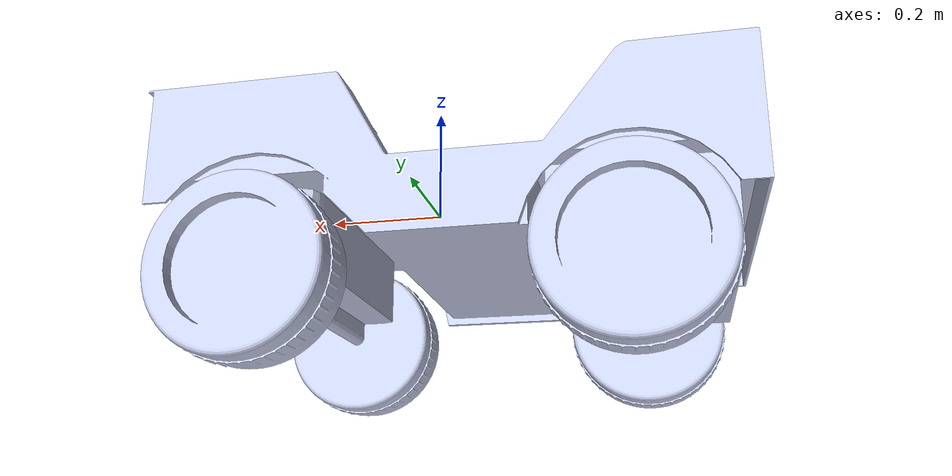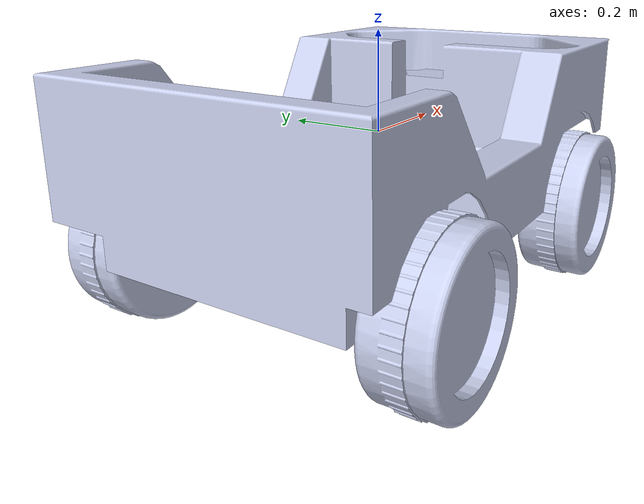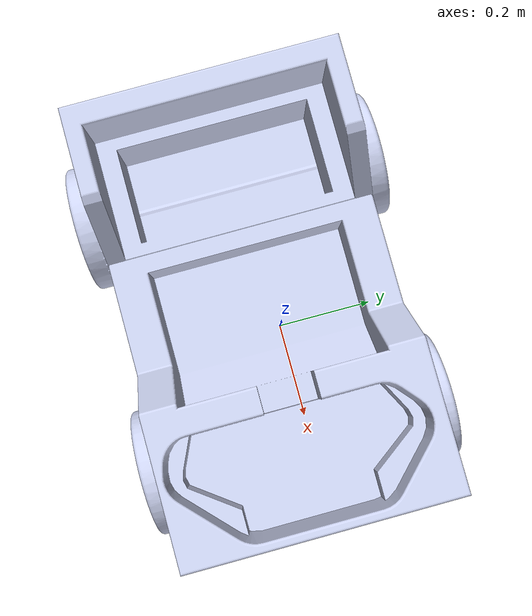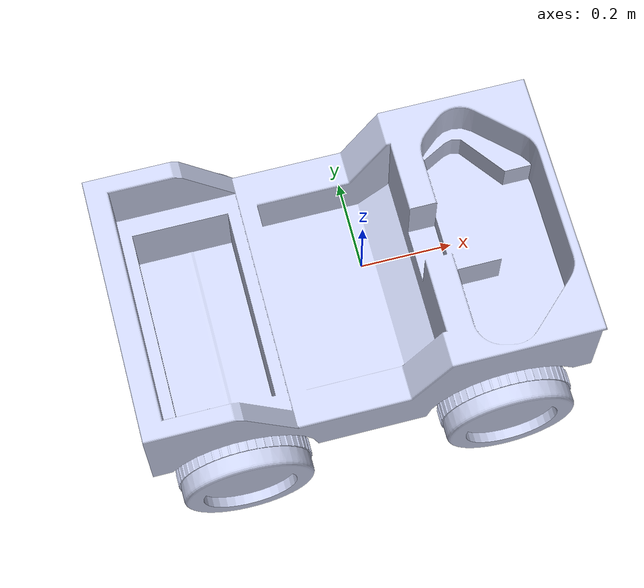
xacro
<?xml version="1.0"?>
<robot xmlns:xacro="http://ros.org/wiki/xacro" name="zenorak">

    <link name="base_link">
        <inertial>
            <origin xyz="0.00169935610472678 -0.0264088300158522 -0.00887384287152697" rpy="0 0 0" />
            <mass value="53.468367880832" />
            <inertia ixx="2.31995848291568" ixy="-0.0135330136565553" ixz="0.00962962421966709" iyy="5.75370953859927" iyz="-0.015886629814071" izz="7.30712487101093" />
        </inertial>
        <visual>
            <origin xyz="0 0 0" rpy="0 0 0" />
            <geometry>
                <mesh filename="file://$(find zenorak_ros2_control)/meshes/visual/base_link.STL" />
            </geometry>
            <material name="">
                <color rgba="0.792156862745098 0.819607843137255 0.933333333333333 1" />
            </material>
        </visual>
        <collision>
            <origin xyz="0 0 0" rpy="0 0 0" />
            <geometry>
                <mesh filename="file://$(find zenorak_ros2_control)/meshes/collision/base_link.STL" />
            </geometry>
        </collision>
    </link>
    <link name="front_left_wheel">
        <inertial>
            <origin xyz="1.58206781009085E-15 8.04911692853238E-16 0.0547827108814377" rpy="0 0 0" />
            <mass value="7.16104527274178" />
            <inertia ixx="0.0473444268968467" ixy="-3.03576608295941E-18" ixz="1.55929200281309E-18" iyy="0.0473444268968467" iyz="2.99484885934959E-19" izz="0.0801617478666343" />
        </inertial>
        <visual>
            <origin xyz="0 0 0" rpy="0 0 0" />
            <geometry>
                <mesh filename="file://$(find zenorak_ros2_control)/meshes/visual/front_left_wheel.STL" />
            </geometry>
            <material name="">
                <color rgba="0.792156862745098 0.819607843137255 0.933333333333333 1" />
            </material>
        </visual>
        <collision>
            <origin xyz="0 0 0" rpy="0 0 0" />
            <geometry>
                <mesh filename="file://$(find zenorak_ros2_control)/meshes/collision/front_left_wheel.STL" />
            </geometry>
        </collision>
    </link>
    <joint name="front_left_wheel_joint" type="continuous">
        <origin xyz="0.23992 -0.26239 -0.15849" rpy="1.5708 -0.1528 0" />
        <parent link="base_link" />
        <child link="front_left_wheel" />
        <axis xyz="0 0 1" />
    </joint>
    <link name="rear_left_wheel">
        <inertial>
            <origin xyz="6.10622663543836E-15 3.02535774210355E-15 0.0547827108814376" rpy="0 0 0" />
            <mass value="7.16104527274178" />
            <inertia ixx="0.0473444268968467" ixy="-5.20417042793042E-18" ixz="-7.65975378716319E-19" iyy="0.0473444268968467" iyz="1.65118432328216E-19" izz="0.0801617478666342" />
        </inertial>
        <visual>
            <origin xyz="0 0 0" rpy="0 0 0" />
            <geometry>
                <mesh filename="file://$(find zenorak_ros2_control)/meshes/visual/rear_left_wheel.STL" />
            </geometry>
            <material name="">
                <color rgba="0.792156862745098 0.819607843137255 0.933333333333333 1" />
            </material>
        </visual>
        <collision>
            <origin xyz="0 0 0" rpy="0 0 0" />
            <geometry>
                <mesh filename="file://$(find zenorak_ros2_control)/meshes/collision/rear_left_wheel.STL" />
            </geometry>
        </collision>
    </link>
    <joint name="rear_left_wheel_joint" type="continuous">
        <origin xyz="-0.3492 -0.26239 -0.15849" rpy="1.5708 -0.82404 0" />
        <parent link="base_link" />
        <child link="rear_left_wheel" />
        <axis xyz="0 0 1" />
    </joint>
    <link name="front_right_wheel">
        <inertial>
            <origin xyz="8.21565038222616E-15 3.73312492030209E-15 0.0547827108814377" rpy="0 0 0" />
            <mass value="7.16104527274178" />
            <inertia ixx="0.0473444268968467" ixy="-1.38777878078145E-17" ixz="-5.7829154300703E-17" iyy="0.0473444268968467" iyz="5.0895068506072E-17" izz="0.0801617478666342" />
        </inertial>
        <visual>
            <origin xyz="0 0 0" rpy="0 0 0" />
            <geometry>
                <mesh filename="file://$(find zenorak_ros2_control)/meshes/visual/front_right_wheel.STL" />
            </geometry>
            <material name="">
                <color rgba="0.792156862745098 0.819607843137255 0.933333333333333 1" />
            </material>
        </visual>
        <collision>
            <origin xyz="0 0 0" rpy="0 0 0" />
            <geometry>
                <mesh filename="file://$(find zenorak_ros2_control)/meshes/collision/front_right_wheel.STL" />
            </geometry>
        </collision>
    </link>
    <joint name="front_right_wheel_joint" type="continuous">
        <origin xyz="0.23992 0.20761 -0.15849" rpy="-1.5708 0.70348 0" />
        <parent link="base_link" />
        <child link="front_right_wheel" />
        <axis xyz="0 0 1" />
    </joint>
    <link name="rear_right_wheel">
        <inertial>
            <origin xyz="5.21804821573824E-15 1.0547118733939E-15 0.0547827108814375" rpy="0 0 0" />
            <mass value="7.16104527274178" />
            <inertia ixx="0.0473444268968467" ixy="-3.46944695195361E-18" ixz="1.83167009339647E-17" iyy="0.0473444268968467" iyz="1.33511956035853E-17" izz="0.0801617478666343" />
        </inertial>
        <visual>
            <origin xyz="0 0 0" rpy="0 0 0" />
            <geometry>
                <mesh filename="file://$(find zenorak_ros2_control)/meshes/visual/rear_right_wheel.STL" />
            </geometry>
            <material name="">
                <color rgba="0.792156862745098 0.819607843137255 0.933333333333333 1" />
            </material>
        </visual>
        <collision>
            <origin xyz="0 0 0" rpy="0 0 0" />
            <geometry>
                <mesh filename="file://$(find zenorak_ros2_control)/meshes/collision/rear_right_wheel.STL" />
            </geometry>
        </collision>
    </link>
    <joint name="rear_right_wheel_joint" type="continuous">
        <origin xyz="-0.3492 0.20761 -0.15849" rpy="-1.5708 -1.1782 0" />
        <parent link="base_link" />
        <child link="rear_right_wheel" />
        <axis xyz="0 0 1" />
    </joint>
    <ros2_control name="zenorak_control" type="system">
        <hardware>
            <plugin>diffdrive_arduino/DiffDriveArduinoHardware</plugin>
            <param name="left_wheel_name">front_left_wheel</param>
            <param name="right_wheel_name">front_right_wheel</param>
            <param name="loop_rate">30</param>
            <param name="device">/dev/ttyACM0</param>
            <param name="baud_rate">57600</param>
            <param name="timeout_ms">1000</param>
            <param name="enc_counts_per_rev">3436</param>
        </hardware>
        <joint name="front_left_wheel">
            <state_interface name="position"/>
            <state_interface name="velocity"/>
            <command_interface name="velocity">
                <param name="min">-10</param>
                <param name="max">10</param>
            </command_interface>
        </joint>
        <joint name="front_right_wheel">
            <state_interface name="position"/>
            <state_interface name="velocity"/>
            <command_interface name="velocity">
                <param name="min">-10</param>
                <param name="max">10</param>
            </command_interface>
        </joint>
    </ros2_control>
</robot>
